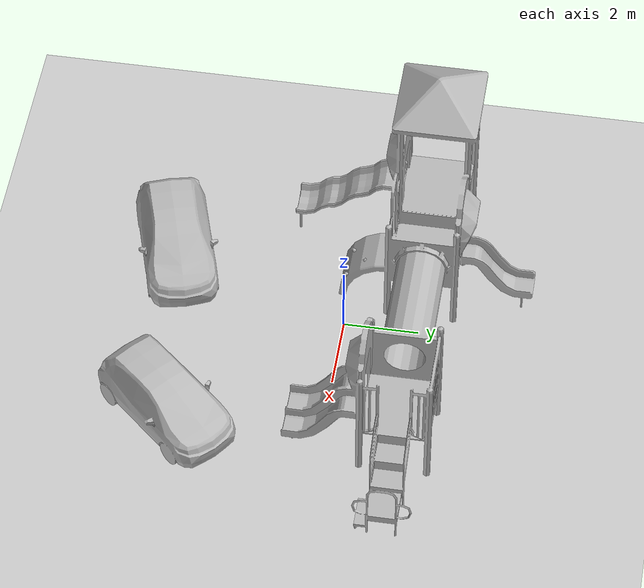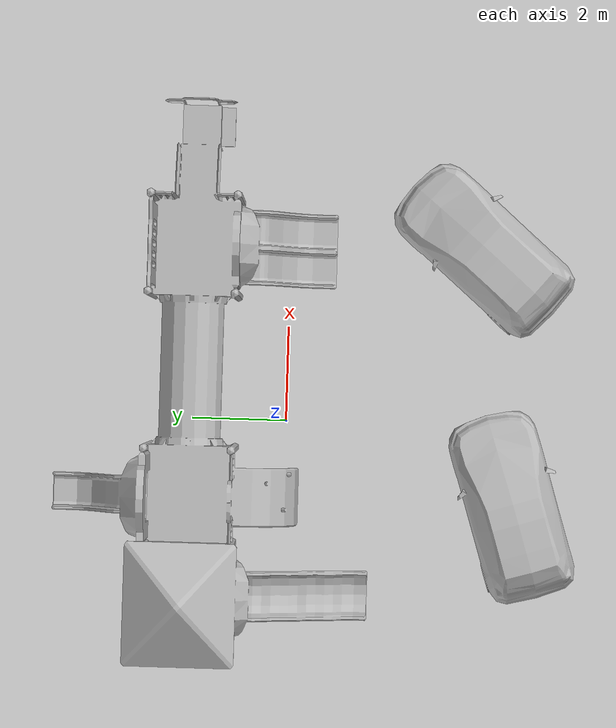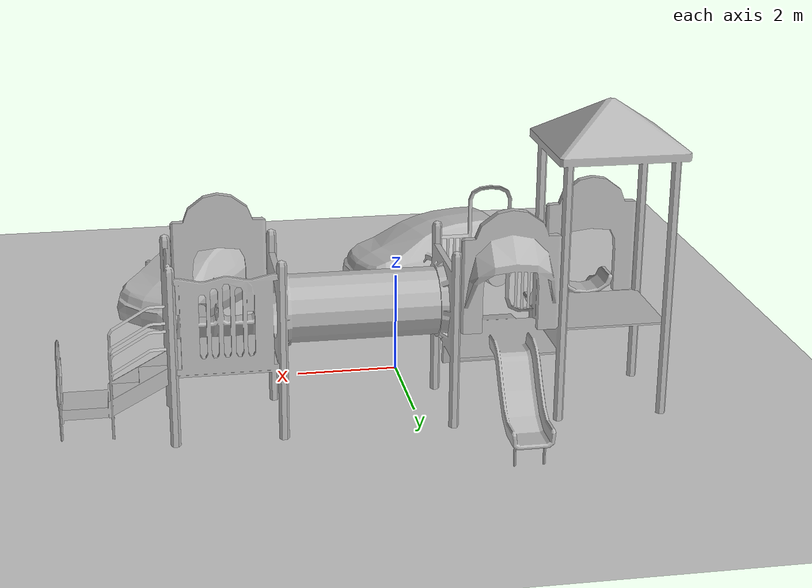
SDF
<sdf version="1.7">
 <world name="default">
  <light name="sun" type="directional">
   <pose>0 0 10 0 -0 0</pose>
   <diffuse>0.8 0.8 0.8 1</diffuse>
   <specular>0.2 0.2 0.2 1</specular>
   <attenuation>
    <range>1000</range>
    <constant>0.9</constant>
    <linear>0.01</linear>
    <quadratic>0.001</quadratic>
   </attenuation>
   <direction>-0.5 0.1 -0.9</direction>
   <spot><inner_angle>0</inner_angle><outer_angle>0</outer_angle><falloff>0</falloff></spot>
  </light>
  <model name="ground_plane">
   <static>1</static>
   <link name="link">
    <collision name="collision">
     <geometry><plane><normal>0 0 1</normal><size>100 100</size></plane></geometry>
     <surface>
      <contact><collide_bitmask>65535</collide_bitmask></contact>
      <friction><ode><mu>100</mu><mu2>50</mu2></ode></friction>
     </surface>
    </collision>
    <visual name="visual">
     <cast_shadows>0</cast_shadows>
     <geometry><plane><normal>0 0 1</normal><size>100 100</size></plane></geometry>
     <material>
      <script><uri>file://media/materials/scripts/gazebo.material</uri><name>Gazebo/Grey</name></script>
     </material>
    </visual>
   </link>
  </model>
  <gravity>0 0 -9.8</gravity>
  <magnetic_field>6e-06 2.3e-05 -4.2e-05</magnetic_field>
  <atmosphere type="adiabatic"/>
  <physics type="ode">
   <max_step_size>0.001</max_step_size>
   <real_time_factor>1</real_time_factor>
   <real_time_update_rate>1000</real_time_update_rate>
  </physics>
  <scene><ambient>0.4 0.4 0.4 1</ambient><background>0.7 0.7 0.7 1</background><shadows>1</shadows></scene>
  <audio><device>default</device></audio>
  <spherical_coordinates>
   <surface_model>EARTH_WGS84</surface_model>
   <latitude_deg>0</latitude_deg>
   <longitude_deg>0</longitude_deg>
   <elevation>0</elevation>
   <heading_deg>0</heading_deg>
  </spherical_coordinates>
  <model name="playground">
   <static>1</static>
   <link name="link">
    <collision name="collision">
     <geometry><mesh><uri>model://playground/meshes/playground.dae</uri></mesh></geometry>
    </collision>
    <visual name="visual">
     <geometry><mesh><uri>model://playground/meshes/playground.dae</uri></mesh></geometry>
    </visual>
   </link>
   <pose>0.914004 1.53857 0 0 -0 0</pose>
  </model>
  <model name="hatchback">
   <static>1</static>
   <link name="link">
    <collision name="collision">
     <pose>0 0 0 0 -0 1.5708</pose>
     <geometry>
      <mesh><scale>0.0254 0.0254 0.0254</scale><uri>model://hatchback/meshes/hatchback.obj</uri></mesh>
     </geometry>
    </collision>
    <visual name="visual">
     <pose>0 0 0 0 -0 1.5708</pose>
     <geometry>
      <mesh><scale>0.0254 0.0254 0.0254</scale><uri>model://hatchback/meshes/hatchback.obj</uri></mesh>
     </geometry>
    </visual>
   </link>
   <pose>3.52027 -4.31586 0 0 -0 0.853884</pose>
  </model>
  <model name="hatchback_blue">
   <static>1</static>
   <link name="link">
    <collision name="collision">
     <pose>0 0 0 0 -0 1.5708</pose>
     <geometry>
      <mesh><scale>0.0254 0.0254 0.0254</scale><uri>model://hatchback_blue/meshes/hatchback.obj</uri></mesh>
     </geometry>
    </collision>
    <visual name="visual">
     <pose>0 0 0 0 -0 1.5708</pose>
     <geometry>
      <mesh><scale>0.0254 0.0254 0.0254</scale><uri>model://hatchback_blue/meshes/hatchback.obj</uri></mesh>
     </geometry>
    </visual>
   </link>
   <pose>-1.9932 -4.9089 0 0 -0 0.29851</pose>
  </model>
 </world>
</sdf>
